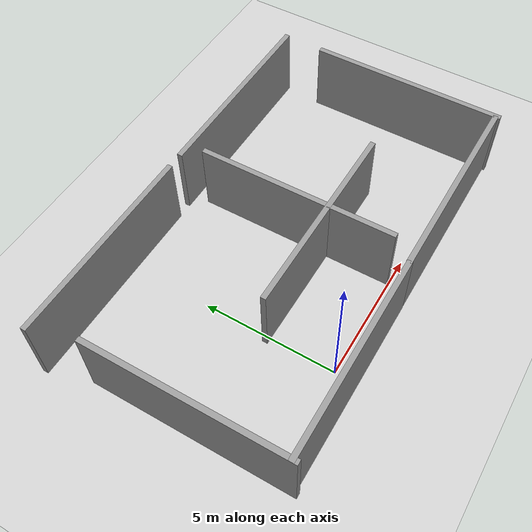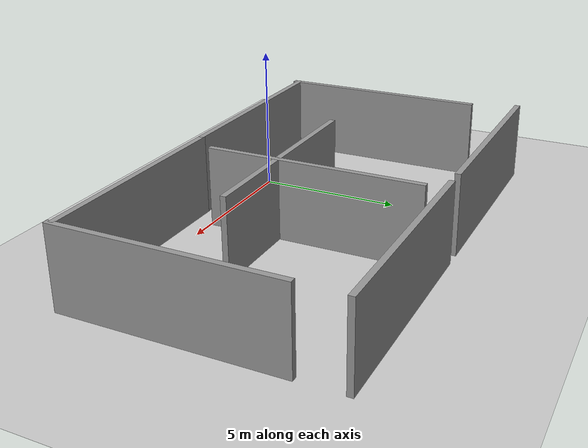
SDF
<sdf version="1.6">
 <world name="default">
  <light name="sun" type="directional">
   <pose>0 0 10 0 -0 0</pose>
   <diffuse>0.8 0.8 0.8 1</diffuse>
   <specular>0.1 0.1 0.1 1</specular>
   <attenuation>
    <range>1000</range>
    <constant>0.9</constant>
    <linear>0.01</linear>
    <quadratic>0.001</quadratic>
   </attenuation>
   <direction>-0.5 0.5 -1</direction>
  </light>
  <model name="ground_plane">
   <static>1</static>
   <link name="link">
    <collision name="collision">
     <geometry><plane><normal>0 0 1</normal><size>100 100</size></plane></geometry>
     <surface><friction><ode><mu>100</mu><mu2>50</mu2></ode></friction></surface>
    </collision>
    <visual name="visual">
     <cast_shadows>0</cast_shadows>
     <geometry><plane><normal>0 0 1</normal><size>100 100</size></plane></geometry>
     <material>
      <script><uri>file://media/materials/scripts/gazebo.material</uri><name>Gazebo/Grey</name></script>
     </material>
    </visual>
   </link>
  </model>
  <gravity>0 0 -9.8</gravity>
  <magnetic_field>6e-06 2.3e-05 -4.2e-05</magnetic_field>
  <atmosphere type="adiabatic"/>
  <physics name="default_physics" default="0" type="ode">
   <max_step_size>0.001</max_step_size>
   <real_time_factor>1</real_time_factor>
   <real_time_update_rate>1000</real_time_update_rate>
  </physics>
  <scene><ambient>0.4 0.4 0.4 1</ambient><background>0.7 0.7 0.7 1</background><shadows>1</shadows></scene>
  <spherical_coordinates>
   <surface_model>EARTH_WGS84</surface_model>
   <latitude_deg>0</latitude_deg>
   <longitude_deg>0</longitude_deg>
   <elevation>0</elevation>
   <heading_deg>0</heading_deg>
  </spherical_coordinates>
  <model name="grey_wall">
   <static>1</static>
   <link name="link">
    <pose>0 0 1.4 0 -0 0</pose>
    <collision name="collision"><geometry><box><size>7.5 0.2 2.8</size></box></geometry></collision>
    <visual name="visual">
     <cast_shadows>0</cast_shadows>
     <geometry><box><size>7.5 0.2 2.8</size></box></geometry>
     <material>
      <script>
       <uri>model://grey_wall/materials/scripts</uri>
       <uri>model://grey_wall/materials/textures</uri>
       <name>vrc/grey_wall</name>
      </script>
     </material>
    </visual>
   </link>
   <pose>-0.988441 8.13301 0 0 -0 0</pose>
  </model>
  <model name="grey_wall_1">
   <static>1</static>
   <link name="link">
    <pose>0 0 1.4 0 -0 0</pose>
    <collision name="collision"><geometry><box><size>7.5 0.2 2.8</size></box></geometry></collision>
    <visual name="visual">
     <cast_shadows>0</cast_shadows>
     <geometry><box><size>7.5 0.2 2.8</size></box></geometry>
     <material>
      <script>
       <uri>model://grey_wall/materials/scripts</uri>
       <uri>model://grey_wall/materials/textures</uri>
       <name>vrc/grey_wall</name>
      </script>
     </material>
    </visual>
   </link>
   <pose>-0.404166 -0.740773 0 0 -0 0</pose>
  </model>
  <model name="grey_wall_2">
   <static>1</static>
   <link name="link">
    <pose>0 0 1.4 0 -0 0</pose>
    <collision name="collision"><geometry><box><size>7.5 0.2 2.8</size></box></geometry></collision>
    <visual name="visual">
     <cast_shadows>0</cast_shadows>
     <geometry><box><size>7.5 0.2 2.8</size></box></geometry>
     <material>
      <script>
       <uri>model://grey_wall/materials/scripts</uri>
       <uri>model://grey_wall/materials/textures</uri>
       <name>vrc/grey_wall</name>
      </script>
     </material>
    </visual>
   </link>
   <pose>7.00592 -0.73098 0 0 -0 0</pose>
  </model>
  <model name="grey_wall_3">
   <static>1</static>
   <link name="link">
    <pose>0 0 1.4 0 -0 0</pose>
    <collision name="collision"><geometry><box><size>7.5 0.2 2.8</size></box></geometry></collision>
    <visual name="visual">
     <cast_shadows>0</cast_shadows>
     <geometry><box><size>7.5 0.2 2.8</size></box></geometry>
     <material>
      <script>
       <uri>model://grey_wall/materials/scripts</uri>
       <uri>model://grey_wall/materials/textures</uri>
       <name>vrc/grey_wall</name>
      </script>
     </material>
    </visual>
   </link>
   <pose>10.7551 2.84403 0 0 0 -1.56862</pose>
  </model>
  <model name="grey_wall_4">
   <static>1</static>
   <link name="link">
    <pose>0 0 1.4 0 -0 0</pose>
    <collision name="collision"><geometry><box><size>7.5 0.2 2.8</size></box></geometry></collision>
    <visual name="visual">
     <cast_shadows>0</cast_shadows>
     <geometry><box><size>7.5 0.2 2.8</size></box></geometry>
     <material>
      <script>
       <uri>model://grey_wall/materials/scripts</uri>
       <uri>model://grey_wall/materials/textures</uri>
       <name>vrc/grey_wall</name>
      </script>
     </material>
    </visual>
   </link>
   <pose>3.98824 3.79639 0 0 0 -1.56171</pose>
  </model>
  <model name="grey_wall_5">
   <static>1</static>
   <link name="link">
    <pose>0 0 1.4 0 -0 0</pose>
    <collision name="collision"><geometry><box><size>7.5 0.2 2.8</size></box></geometry></collision>
    <visual name="visual">
     <cast_shadows>0</cast_shadows>
     <geometry><box><size>7.5 0.2 2.8</size></box></geometry>
     <material>
      <script>
       <uri>model://grey_wall/materials/scripts</uri>
       <uri>model://grey_wall/materials/textures</uri>
       <name>vrc/grey_wall</name>
      </script>
     </material>
    </visual>
   </link>
   <pose>-4.10386 2.80083 0 0 -0 1.58339</pose>
  </model>
  <model name="grey_wall_6">
   <static>1</static>
   <link name="link">
    <pose>0 0 1.4 0 -0 0</pose>
    <collision name="collision"><geometry><box><size>7.5 0.2 2.8</size></box></geometry></collision>
    <visual name="visual">
     <cast_shadows>0</cast_shadows>
     <geometry><box><size>7.5 0.2 2.8</size></box></geometry>
     <material>
      <script>
       <uri>model://grey_wall/materials/scripts</uri>
       <uri>model://grey_wall/materials/textures</uri>
       <name>vrc/grey_wall</name>
      </script>
     </material>
    </visual>
   </link>
   <pose>3.54629 2.54964 0 0 -0 0</pose>
  </model>
  <model name="grey_wall_7">
   <static>1</static>
   <link name="link">
    <pose>0 0 1.4 0 -0 0</pose>
    <collision name="collision"><geometry><box><size>7.5 0.2 2.8</size></box></geometry></collision>
    <visual name="visual">
     <cast_shadows>0</cast_shadows>
     <geometry><box><size>7.5 0.2 2.8</size></box></geometry>
     <material>
      <script>
       <uri>model://grey_wall/materials/scripts</uri>
       <uri>model://grey_wall/materials/textures</uri>
       <name>vrc/grey_wall</name>
      </script>
     </material>
    </visual>
   </link>
   <pose>7.07285 8.13244 0 0 -0 0</pose>
  </model>
  <model name="wood_block_10_2_1cm">
   <link name="link">
    <pose>0 0 0.005 0 -0 0</pose>
    <inertial>
     <mass>0.0125</mass>
     <inertia>
      <ixx>7.55208e-07</ixx>
      <ixy>0</ixy>
      <ixz>0</ixz>
      <iyy>1.05208e-05</iyy>
      <iyz>0</iyz>
      <izz>1.10677e-05</izz>
     </inertia>
    </inertial>
    <collision name="collision">
     <geometry><box><size>0.1 0.025 0.01</size></box></geometry>
     <surface><contact><ode><max_vel>0.1</max_vel><min_depth>0.001</min_depth></ode></contact></surface>
    </collision>
    <visual name="visual">
     <geometry><box><size>0.1 0.025 0.01</size></box></geometry>
     <material>
      <script><uri>file://media/materials/scripts/gazebo.material</uri><name>Gazebo/Wood</name></script>
     </material>
    </visual>
   </link>
   <pose>5.54949 1.97638 -1.5e-05 0.000148 -0 0</pose>
  </model>
 </world>
</sdf>
